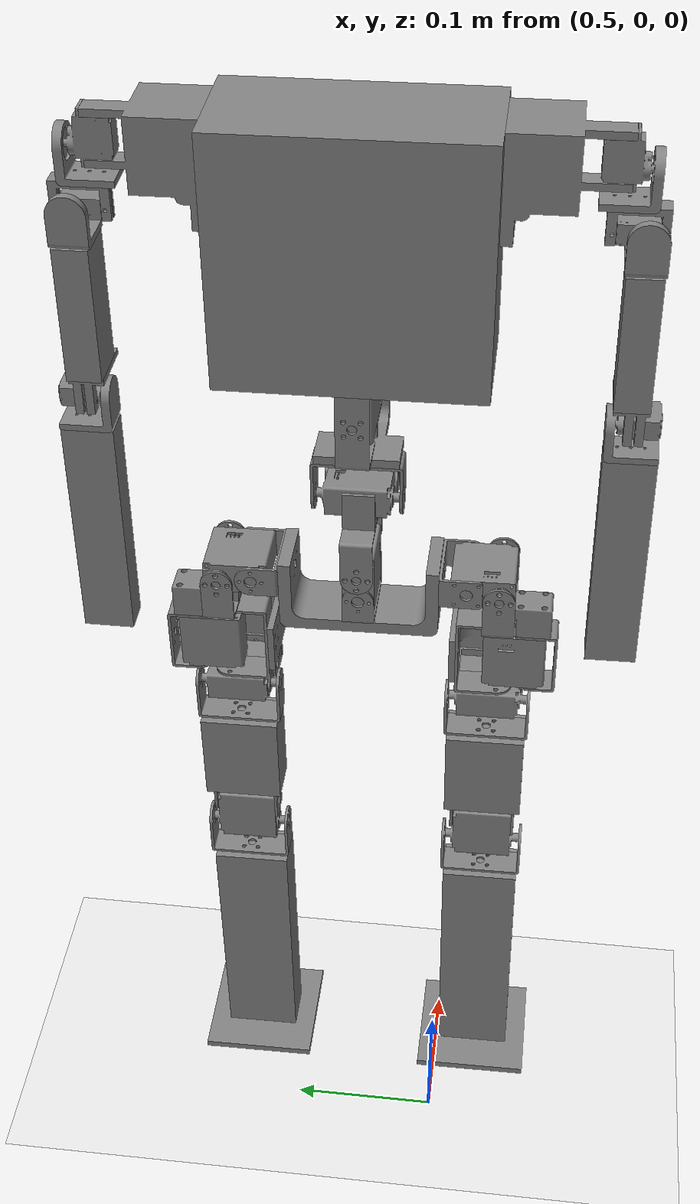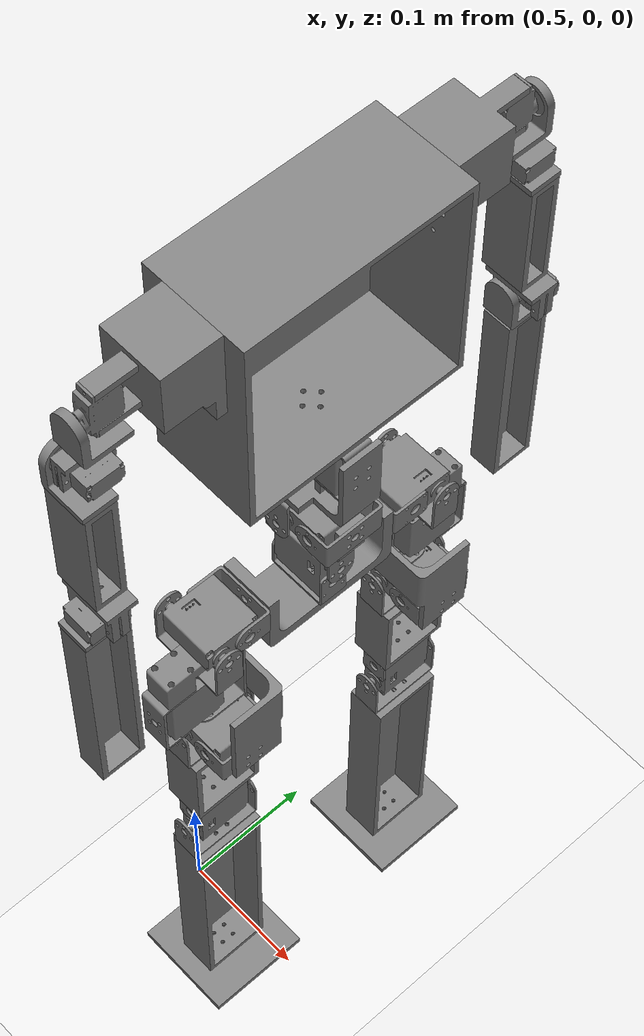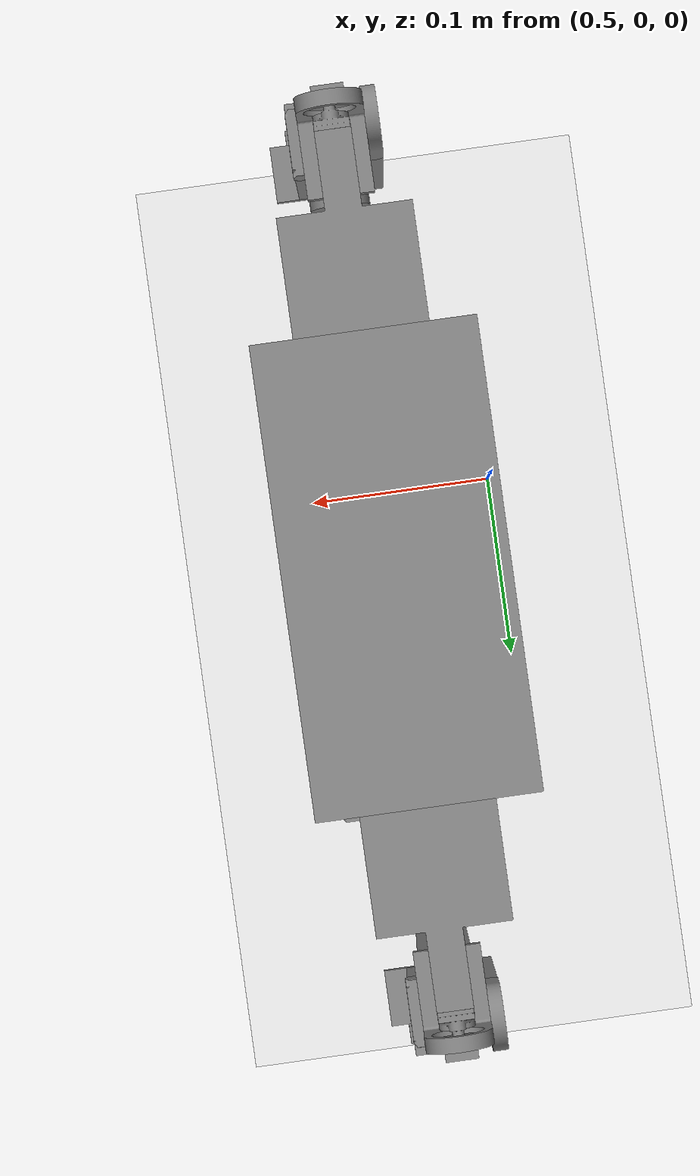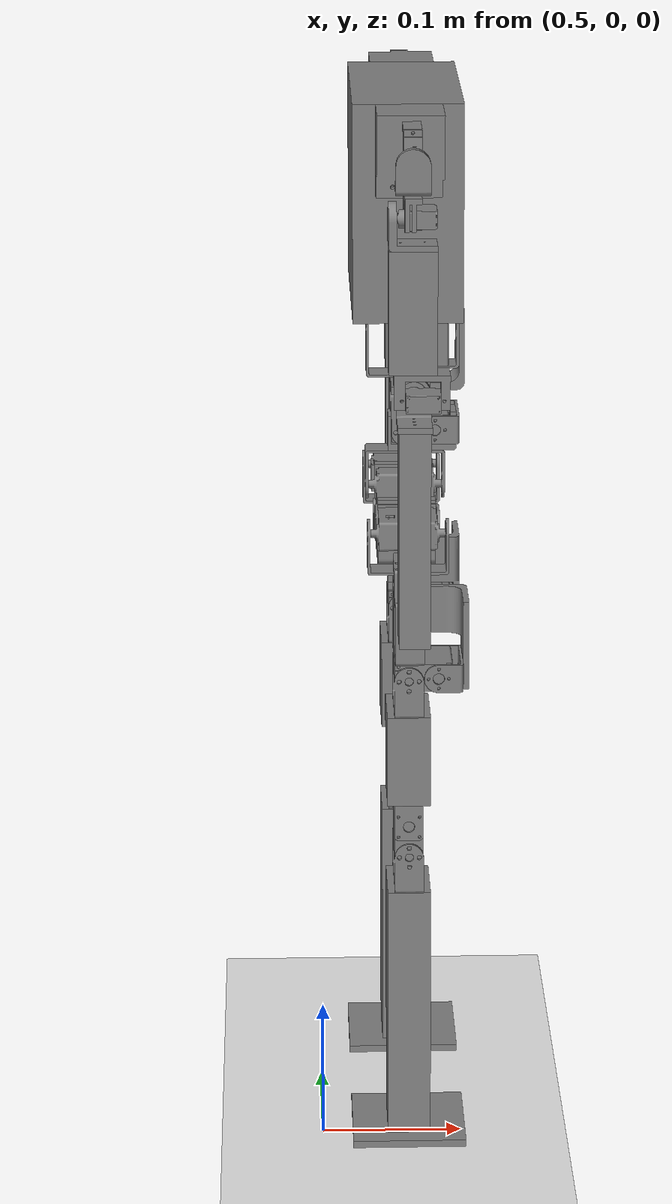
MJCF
<?xml version='1.0' encoding='utf-8'?>
<mujoco model="HumanoidReal">
  <compiler angle="radian" discardvisual="false" meshdir="humanoid_meshes" />
  <asset>
    <mesh name="base_link" content_type="model/stl" file="base_link.stl" scale="0.001 0.001 0.001" />
    <mesh name="mount_2" content_type="model/stl" file="mount_2.stl" scale="0.001 0.001 0.001" />
    <mesh name="mount_6" content_type="model/stl" file="mount_6.stl" scale="0.001 0.001 0.001" />
    <mesh name="mount_3" content_type="model/stl" file="mount_3.stl" scale="0.001 0.001 0.001" />
    <mesh name="mount_1" content_type="model/stl" file="mount_1.stl" scale="0.001 0.001 0.001" />
    <mesh name="mount_4" content_type="model/stl" file="mount_4.stl" scale="0.001 0.001 0.001" />
    <mesh name="mount_5" content_type="model/stl" file="mount_5.stl" scale="0.001 0.001 0.001" />
    <mesh name="0003_9" content_type="model/stl" file="0003_9.stl" scale="0.001 0.001 0.001" />
    <mesh name="0003_8" content_type="model/stl" file="0003_8.stl" scale="0.001 0.001 0.001" />
    <mesh name="0003_7" content_type="model/stl" file="0003_7.stl" scale="0.001 0.001 0.001" />
    <mesh name="0003_2" content_type="model/stl" file="0003_2.stl" scale="0.001 0.001 0.001" />
    <mesh name="0003_6" content_type="model/stl" file="0003_6.stl" scale="0.001 0.001 0.001" />
    <mesh name="0003_4" content_type="model/stl" file="0003_4.stl" scale="0.001 0.001 0.001" />
    <mesh name="0003_1" content_type="model/stl" file="0003_1.stl" scale="0.001 0.001 0.001" />
    <mesh name="0003_10" content_type="model/stl" file="0003_10.stl" scale="0.001 0.001 0.001" />
    <mesh name="0003_11" content_type="model/stl" file="0003_11.stl" scale="0.001 0.001 0.001" />
    <mesh name="0003_5" content_type="model/stl" file="0003_5.stl" scale="0.001 0.001 0.001" />
    <mesh name="0003_3" content_type="model/stl" file="0003_3.stl" scale="0.001 0.001 0.001" />
    <mesh name="0004_1" content_type="model/stl" file="0004_1.stl" scale="0.001 0.001 0.001" />
    <mesh name="0004_3" content_type="model/stl" file="0004_3.stl" scale="0.001 0.001 0.001" />
    <mesh name="rightXZprint_1" content_type="model/stl" file="rightXZprint_1.stl" scale="0.001 0.001 0.001" />
    <mesh name="rightXZprint_2" content_type="model/stl" file="rightXZprint_2.stl" scale="0.001 0.001 0.001" />
    <mesh name="0004_7" content_type="model/stl" file="0004_7.stl" scale="0.001 0.001 0.001" />
    <mesh name="0004_6" content_type="model/stl" file="0004_6.stl" scale="0.001 0.001 0.001" />
    <mesh name="rightZYprint_1" content_type="model/stl" file="rightZYprint_1.stl" scale="0.001 0.001 0.001" />
    <mesh name="LeftZYprint_1" content_type="model/stl" file="LeftZYprint_1.stl" scale="0.001 0.001 0.001" />
    <mesh name="0004_10" content_type="model/stl" file="0004_10.stl" scale="0.001 0.001 0.001" />
    <mesh name="0004_8" content_type="model/stl" file="0004_8.stl" scale="0.001 0.001 0.001" />
    <mesh name="thigh_2" content_type="model/stl" file="thigh_2.stl" scale="0.001 0.001 0.001" />
    <mesh name="thigh_1" content_type="model/stl" file="thigh_1.stl" scale="0.001 0.001 0.001" />
    <mesh name="0004_9" content_type="model/stl" file="0004_9.stl" scale="0.001 0.001 0.001" />
    <mesh name="0004_2" content_type="model/stl" file="0004_2.stl" scale="0.001 0.001 0.001" />
    <mesh name="rightshin_1" content_type="model/stl" file="rightshin_1.stl" scale="0.001 0.001 0.001" />
    <mesh name="rightshin_2" content_type="model/stl" file="rightshin_2.stl" scale="0.001 0.001 0.001" />
    <mesh name="rightfoot_2" content_type="model/stl" file="rightfoot_2.stl" scale="0.001 0.001 0.001" />
    <mesh name="rightfoot_1" content_type="model/stl" file="rightfoot_1.stl" scale="0.001 0.001 0.001" />
    <mesh name="0004_11" content_type="model/stl" file="0004_11.stl" scale="0.001 0.001 0.001" />
    <mesh name="XYWaist_1" content_type="model/stl" file="XYWaist_1.stl" scale="0.001 0.001 0.001" />
    <mesh name="0004_4" content_type="model/stl" file="0004_4.stl" scale="0.001 0.001 0.001" />
    <mesh name="YZWaist_1" content_type="model/stl" file="YZWaist_1.stl" scale="0.001 0.001 0.001" />
    <mesh name="0004_5" content_type="model/stl" file="0004_5.stl" scale="0.001 0.001 0.001" />
    <mesh name="shoulderLeft_1" content_type="model/stl" file="shoulderLeft_1.stl" scale="0.001 0.001 0.001" />
    <mesh name="shoulderRight_1" content_type="model/stl" file="shoulderRight_1.stl" scale="0.001 0.001 0.001" />
    <mesh name="Component22_1" content_type="model/stl" file="Component22_1.stl" scale="0.001 0.001 0.001" />
    <mesh name="SCS0009_6" content_type="model/stl" file="SCS0009_6.stl" scale="0.001 0.001 0.001" />
    <mesh name="SCS0009_5" content_type="model/stl" file="SCS0009_5.stl" scale="0.001 0.001 0.001" />
    <mesh name="rightShoulderConnector_1" content_type="model/stl" file="rightShoulderConnector_1.stl" scale="0.001 0.001 0.001" />
    <mesh name="shoulderConnector_1" content_type="model/stl" file="shoulderConnector_1.stl" scale="0.001 0.001 0.001" />
    <mesh name="SCS0009_1" content_type="model/stl" file="SCS0009_1.stl" scale="0.001 0.001 0.001" />
    <mesh name="SCS0009_4" content_type="model/stl" file="SCS0009_4.stl" scale="0.001 0.001 0.001" />
    <mesh name="upperArm_2" content_type="model/stl" file="upperArm_2.stl" scale="0.001 0.001 0.001" />
    <mesh name="upperArm_1" content_type="model/stl" file="upperArm_1.stl" scale="0.001 0.001 0.001" />
    <mesh name="elbowConnector_1" content_type="model/stl" file="elbowConnector_1.stl" scale="0.001 0.001 0.001" />
    <mesh name="rightElbowConnector_1" content_type="model/stl" file="rightElbowConnector_1.stl" scale="0.001 0.001 0.001" />
    <mesh name="SCS0009_3" content_type="model/stl" file="SCS0009_3.stl" scale="0.001 0.001 0.001" />
    <mesh name="SCS0009_2" content_type="model/stl" file="SCS0009_2.stl" scale="0.001 0.001 0.001" />
    <mesh name="forearm_1" content_type="model/stl" file="forearm_1.stl" scale="0.001 0.001 0.001" />
    <mesh name="forearm_2" content_type="model/stl" file="forearm_2.stl" scale="0.001 0.001 0.001" />
    <mesh name="Servo_SC15_7" content_type="model/stl" file="Servo_SC15_7.stl" scale="0.001 0.001 0.001" />
    <mesh name="Servo_SC15_1" content_type="model/stl" file="Servo_SC15_1.stl" scale="0.001 0.001 0.001" />
    <mesh name="Servo_SC15_2" content_type="model/stl" file="Servo_SC15_2.stl" scale="0.001 0.001 0.001" />
    <mesh name="Servo_SC15_10" content_type="model/stl" file="Servo_SC15_10.stl" scale="0.001 0.001 0.001" />
    <mesh name="Servo_SC15_3" content_type="model/stl" file="Servo_SC15_3.stl" scale="0.001 0.001 0.001" />
    <mesh name="Servo_SC15_9" content_type="model/stl" file="Servo_SC15_9.stl" scale="0.001 0.001 0.001" />
    <mesh name="Servo_SC15_11" content_type="model/stl" file="Servo_SC15_11.stl" scale="0.001 0.001 0.001" />
    <mesh name="Servo_SC15_4" content_type="model/stl" file="Servo_SC15_4.stl" scale="0.001 0.001 0.001" />
    <mesh name="Servo_SC15_8" content_type="model/stl" file="Servo_SC15_8.stl" scale="0.001 0.001 0.001" />
    <mesh name="Servo_SC15_6" content_type="model/stl" file="Servo_SC15_6.stl" scale="0.001 0.001 0.001" />
    <mesh name="Servo_SC15_5" content_type="model/stl" file="Servo_SC15_5.stl" scale="0.001 0.001 0.001" />
  </asset>
  <worldbody>
    <light directional="true" diffuse=".8 .8 .8" pos="0 0 5" dir="0 0 -1" />
    <geom name="floor" type="plane" size="10 10 0.1" rgba=".9 .9 .9 1" condim="3" contype="1" conaffinity="1" friction="1 0.05 0.01" />
    <body name="base_link" pos="0 0 -0.0130">
      <inertial pos="0.560761 0.0595841 0.468225" quat="0.71166 0.702462 0.00423149 -0.00831799" mass="0.200499" diaginertia="0.000487525 0.000480397 5.91675e-05" />
      <joint name="base_joint" type="free" />
      <geom class="col" type="box" pos="0.56068 0.059705 0.46901" size="0.024557 0.09239 0.026525" />
      <geom type="mesh" mesh="base_link" />
      <geom type="mesh" mesh="0004_1" />
      <geom type="mesh" mesh="Servo_SC15_7" />
      <geom type="mesh" mesh="0004_3" />
      <geom type="mesh" mesh="Servo_SC15_8" />
      <geom type="mesh" mesh="0004_11" />
      <geom type="mesh" mesh="Servo_SC15_3" />
      <!-- ===== RIGHT LEG (-Y side): hip-roll R18 -> hip-yaw R26 -> hip-pitch R23 -> knee R21 ===== -->
      <body name="0003_9" pos="0.540429 -0.527466 0.983811">
        <inertial pos="0.0199709 0.487905 -0.546011" quat="0.703204 -0.112714 0.108979 0.693487" mass="0.0776808" diaginertia="5.95863e-05 5.93547e-05 2.03218e-05" />
        <joint name="Revolute 18" pos="0.045703 0.49663 -0.50471" axis="1 0 0" range="-1.5708 0.349066" actuatorfrcrange="-100 100" />
        <geom class="col" type="box" pos="0.019903 0.48517 -0.54391" size="0.02641 0.023137 0.045995" />
        <geom pos="-0.540429 0.527466 -0.983811" quat="1 0 0 0" type="mesh" mesh="0003_9" />
        <geom pos="-0.540429 0.527466 -0.983811" quat="1 0 0 0" type="mesh" mesh="rightXZprint_2" />
        <geom pos="-0.540429 0.527466 -0.983811" type="mesh" mesh="0004_6" />
        <geom pos="-0.540429 0.527466 -0.983811" quat="1 0 0 0" type="mesh" mesh="Servo_SC15_6" />
        <body name="0003_11" pos="-0.437997 1.05685 -0.548399">
          <inertial pos="0.474096 -0.547086 -0.0384282" quat="0.675749 -0.203659 0.00282291 0.708434" mass="0.206952" diaginertia="0.000149888 0.000129229 7.29504e-05" />
          <joint name="Revolute 26" pos="0.46038 -0.55657 -0.044116" axis="0 -0.013033 -0.999915" range="-1.5708 0.959931" actuatorfrcrange="-100 100" />
          <geom class="col" type="box" pos="0.47388 -0.55295 -0.028927" size="0.024538 0.024714 0.036634" />
          <geom pos="-0.102432 -0.529383 -0.435412" type="mesh" mesh="0003_11" />
          <geom pos="-0.102432 -0.529383 -0.435412" quat="1 0 0 0" type="mesh" mesh="LeftZYprint_1" />
          <geom pos="-0.102432 -0.529383 -0.435412" quat="1 0 0 0" type="mesh" mesh="0004_10" />
          <geom pos="-0.102432 -0.529383 -0.435412" quat="1 0 0 0" type="mesh" mesh="Servo_SC15_11" />
          <body name="0003_4" pos="-0.091932 -0.549871 0.341287">
            <inertial pos="0.549211 -0.00442872 -0.464503" quat="0.99995 -0.00961247 -0.00287962 0.000387732" mass="0.0794069" diaginertia="0.00011649 0.000102172 2.14625e-05" />
            <joint name="Revolute 23" pos="0.54708 -0.029244 -0.39741" axis="0 -0.999915 0.013033" range="-1.5708 0.349066" actuatorfrcrange="-100 100" />
            <geom class="col" type="box" pos="0.55 -0.003554 -0.46301" size="0.01425 0.026624 0.071134" />
            <geom pos="-0.0105 0.020488 -0.776699" quat="1 0 0 0" type="mesh" mesh="0003_4" />
            <geom pos="-0.0105 0.020488 -0.776699" type="mesh" mesh="thigh_1" />
            <geom pos="-0.0105 0.020488 -0.776699" quat="1 0 0 0" type="mesh" mesh="0004_2" />
            <geom pos="-0.0105 0.020488 -0.776699" type="mesh" mesh="Servo_SC15_10" />
            <body name="0003_2" pos="0.80407 -0.037649 -1.06229">
              <inertial pos="-0.255259 0.0306227 0.416142" quat="0.999979 -0.00651593 0.000166268 4.30665e-06" mass="0.0225885" diaginertia="9.51179e-05 9.14171e-05 7.58717e-06" />
              <joint name="Revolute 21" pos="-0.25103 0.057961 0.53458" axis="0 0.999915 -0.013033" range="-1.5708 1.5708" actuatorfrcrange="-100 100" />
              <geom class="col" type="box" pos="-0.25393 0.02937 0.43109" size="0.038 0.038028 0.10776" />
              <geom pos="-0.81457 0.058137 0.28559" quat="1 0 0 0" type="mesh" mesh="0003_2" />
              <geom pos="-0.81457 0.058137 0.28559" type="mesh" mesh="rightshin_2" />
              <geom pos="-0.81457 0.058137 0.28559" quat="1 0 0 0" type="mesh" mesh="rightfoot_2" />
            </body>
          </body>
        </body>
      </body>
      <!-- ===== LEFT LEG (+Y side): hip-roll R24 -> hip-yaw R28 -> hip-pitch R25 -> knee R27 ===== -->
      <body name="0003_1" pos="0.395242 0.737653 0.965035">
        <inertial pos="0.165721 -0.579743 -0.52981" quat="0.70456 0.103533 -0.0999379 0.694902" mass="0.0776808" diaginertia="5.95863e-05 5.93547e-05 2.03218e-05" />
        <joint name="Revolute 24" pos="0.13999 -0.58739 -0.4883" axis="-1 0 0" range="-1.5708 0.174533" actuatorfrcrange="-100 100" />
        <geom class="col" type="box" pos="0.16579 -0.57703 -0.52742" size="0.02641 0.022641 0.045995" />
        <geom pos="-0.395242 -0.737653 -0.965035" quat="1 0 0 0" type="mesh" mesh="0003_1" />
        <geom pos="-0.395242 -0.737653 -0.965035" quat="1 0 0 0" type="mesh" mesh="rightXZprint_1" />
        <geom pos="-0.395242 -0.737653 -0.965035" type="mesh" mesh="0004_7" />
        <geom pos="-0.395242 -0.737653 -0.965035" quat="1 0 0 0" type="mesh" mesh="Servo_SC15_9" />
        <body name="0003_3" pos="0.610997 -1.12513 -0.692973">
          <inertial pos="-0.429313 0.522882 0.122926" quat="0.719961 0.00594836 -0.199 0.664846" mass="0.206952" diaginertia="0.000150862 0.000130091 7.31868e-05" />
          <joint name="Revolute 28" pos="-0.44798 0.53223 0.11699" axis="0 -0.013033 -0.999915" range="-0.959931 1.5708" actuatorfrcrange="-100 100" />
          <geom class="col" type="box" pos="-0.42953 0.52862 0.1323" size="0.024538 0.02455 0.036665" />
          <geom pos="-1.00624 0.38748 -0.272062" type="mesh" mesh="0003_3" />
          <geom pos="-1.00624 0.38748 -0.272062" quat="1 0 0 0" type="mesh" mesh="rightZYprint_1" />
          <geom pos="-1.00624 0.38748 -0.272062" quat="1 0 0 0" type="mesh" mesh="0004_8" />
          <geom pos="-1.00624 0.38748 -0.272062" quat="1 0 0 0" type="mesh" mesh="Servo_SC15_4" />
          <body name="0003_10" pos="-0.995739 0.366978 0.502481">
            <inertial pos="0.54961 0.160975 -0.464503" quat="0.99995 -0.00961056 -0.00287866 0.00038788" mass="0.0794069" diaginertia="0.00011649 0.000102172 2.14625e-05" />
            <joint name="Revolute 25" pos="0.54748 0.13616 -0.39741" axis="0 -0.999915 0.013033" range="-1.5708 0.349066" actuatorfrcrange="-100 100" />
            <geom class="col" type="box" pos="0.5504 0.16185 -0.46301" size="0.01425 0.026624 0.071134" />
            <geom pos="-0.0105 0.020502 -0.774543" quat="1 0 0 0" type="mesh" mesh="0003_10" />
            <geom pos="-0.0105 0.020502 -0.774543" type="mesh" mesh="thigh_2" />
            <geom pos="-0.0105 0.020502 -0.774543" quat="1 0 0 0" type="mesh" mesh="0004_9" />
            <geom pos="-0.0105 0.020502 -0.774543" type="mesh" mesh="Servo_SC15_5" />
            <body name="0003_5" pos="0.802314 0.293125 -1.06485">
              <inertial pos="-0.253103 -0.136139 0.418716" quat="0.999968 -0.0080307 0.000162436 -0.000421537" mass="0.0225885" diaginertia="9.51212e-05 9.14178e-05 7.58976e-06" />
              <joint name="Revolute 27" pos="-0.25335 -0.10745 0.53383" axis="0 0.999915 -0.013033" range="-1.5708 1.5708" actuatorfrcrange="-100 100" />
              <geom class="col" type="box" pos="-0.25177 -0.1375 0.43366" size="0.038 0.038028 0.10775" />
              <geom pos="-0.812814 -0.272623 0.290302" quat="1 0 0 0" type="mesh" mesh="0003_5" />
              <geom pos="-0.812814 -0.272623 0.290302" type="mesh" mesh="rightshin_1" />
              <geom pos="-0.812814 -0.272623 0.290302" quat="1 0 0 0" type="mesh" mesh="rightfoot_1" />
            </body>
          </body>
        </body>
      </body>
      <!-- ===== WAIST / TORSO: roll R22 -> pitch R20 -> yaw R19 (0003_8 carries both arms) ===== -->
      <body name="0003_6" pos="0.482752 -0.417042 1.07481">
        <inertial pos="0.0885842 0.478008 -0.553434" quat="0.648893 0.29978 0.347507 0.606885" mass="0.125775" diaginertia="6.52373e-05 5.69452e-05 3.12876e-05" />
        <joint name="Revolute 22" pos="0.052479 0.47988 -0.58753" axis="-1 0 0" range="-0.610865 0.610865" actuatorfrcrange="-100 100" />
        <geom class="col" type="box" pos="0.083129 0.47867 -0.56507" size="0.031017 0.024291 0.030802" />
        <geom pos="-0.482752 0.417042 -1.07481" quat="1 0 0 0" type="mesh" mesh="0003_6" />
        <geom pos="-0.482752 0.417042 -1.07481" quat="1 0 0 0" type="mesh" mesh="XYWaist_1" />
        <geom pos="-0.482752 0.417042 -1.07481" quat="1 0 0 0" type="mesh" mesh="0004_4" />
        <geom pos="-0.482752 0.417042 -1.07481" quat="1 0 0 0" type="mesh" mesh="Servo_SC15_1" />
        <body name="0003_7" pos="-0.472252 0.395027 0.010165">
          <inertial pos="0.564995 0.0840484 -0.509006" quat="0.703699 0.14178 0.15295 0.6792" mass="0.0775978" diaginertia="5.80811e-05 5.64689e-05 2.22622e-05" />
          <joint name="Revolute 20" pos="0.55329 0.057887 -0.55353" axis="0 -0.999979 0.006517" range="-0.349066 1.5708" actuatorfrcrange="-100 100" />
          <geom class="col" type="box" pos="0.56602 0.08374 -0.51373" size="0.024356 0.026518 0.046936" />
          <geom pos="-0.0105 0.022015 -1.08498" quat="1 0 0 0" type="mesh" mesh="0003_7" />
          <geom pos="-0.0105 0.022015 -1.08498" quat="1 0 0 0" type="mesh" mesh="YZWaist_1" />
          <geom pos="-0.0105 0.022015 -1.08498" quat="1 0 0 0" type="mesh" mesh="0004_5" />
          <geom pos="-0.0105 0.022015 -1.08498" quat="1 0 0 0" type="mesh" mesh="Servo_SC15_2" />
          <body name="0003_8" pos="0 0.677737 -0.408133">
            <inertial pos="0.545233 -0.592748 0.0233442" quat="0.709375 0.704761 0.00704921 -0.00696769" mass="0.0651469" diaginertia="0.000335532 0.000217093 0.000162389" />
            <joint name="Revolute 19" pos="0.55039 -0.59626 -0.055993" axis="0 0.006517 0.999979" range="-1.5708 1.5708" actuatorfrcrange="-100 100" />
            <geom class="col" type="box" pos="0.55039 -0.59244 -0.0064592" size="0.035625 0.15077 0.098056" />
            <geom pos="-0.0105 -0.655722 -0.676846" quat="1 0 0 0" type="mesh" mesh="0003_8" />
            <geom pos="-0.0105 -0.655722 -0.676846" quat="1 0 0 0" type="mesh" mesh="Component22_1" />
            <geom pos="-0.0105 -0.655722 -0.676846" quat="1 0 0 0" type="mesh" mesh="shoulderLeft_1" />
            <geom pos="-0.0105 -0.655722 -0.676846" quat="1 0 0 0" type="mesh" mesh="SCS0009_5" />
            <geom pos="-0.0105 -0.655722 -0.676846" quat="1 0 0 0" type="mesh" mesh="shoulderRight_1" />
            <geom pos="-0.0105 -0.655722 -0.676846" quat="1 0 0 0" type="mesh" mesh="SCS0009_6" />
            <!-- ===== LEFT ARM (+Y side): shoulder R2 -> R6 -> elbow R1 ===== -->
            <body name="mount_6" pos="0.54596 -0.420605 0.079674">
              <inertial pos="0.00522431 -0.0205656 -0.0345126" quat="0.993894 -0.0455086 -0.00182503 0.1005" mass="0.0111502" diaginertia="2.75276e-06 2.47098e-06 1.15447e-06" />
              <joint name="Revolute 2" pos="0.0028757 -0.013245 -0.01882" axis="0 0.999979 -0.006517" range="-2.0944 2.0944" actuatorfrcrange="-100 100" />
              <geom class="col" type="box" pos="0.0057089 -0.023817 -0.026448" size="0.014226 0.018524 0.026353" />
              <geom pos="-0.55646 -0.235117 -0.75652" quat="1 0 0 0" type="mesh" mesh="mount_6" />
              <geom pos="-0.55646 -0.235117 -0.75652" quat="1 0 0 0" type="mesh" mesh="rightShoulderConnector_1" />
              <geom pos="-0.55646 -0.235117 -0.75652" quat="1 0 0 0" type="mesh" mesh="SCS0009_1" />
              <body name="mount_5" pos="-0.01447 -0.002339 -0.035059">
                <inertial pos="0.0192529 -0.0123951 -0.0789889" quat="0.683819 -0.0221439 -0.0417918 0.728118" mass="0.0143067" diaginertia="2.07945e-05 2.02537e-05 1.57638e-06" />
                <joint name="Revolute 6" pos="0.0052039 -0.019244 -0.016752" axis="-1 0 0" range="-1.5708 0.436332" actuatorfrcrange="-100 100" />
                <geom class="col" type="box" pos="0.023491 -0.0089637 -0.069134" size="0.019285 0.014938 0.066884" />
                <geom pos="-0.54199 -0.232778 -0.721461" quat="1 0 0 0" type="mesh" mesh="mount_5" />
                <geom pos="-0.54199 -0.232778 -0.721461" quat="1 0 0 0" type="mesh" mesh="upperArm_2" />
                <geom pos="-0.54199 -0.232778 -0.721461" quat="1 0 0 0" type="mesh" mesh="rightElbowConnector_1" />
                <geom pos="-0.54199 -0.232778 -0.721461" quat="1 0 0 0" type="mesh" mesh="SCS0009_2" />
                <body name="mount_2" pos="0.015106 -0.01 -0.12041">
                  <inertial pos="0.00454219 0.00029577 -0.0973817" quat="0.999949 0.00977886 0.000985036 0.00235478" mass="0.00475984" diaginertia="1.14432e-05 1.11889e-05 5.20745e-07" />
                  <joint name="Revolute 1" pos="0.01126 -0.013189 -0.0037075" axis="0 -1 0" range="0 2.0944" actuatorfrcrange="-100 100" />
                  <geom class="col" type="box" pos="0.0052039 0.00081094 -0.08873" size="0.010925 0.0152 0.0855" />
                  <geom pos="-0.557096 -0.222778 -0.601051" quat="1 0 0 0" type="mesh" mesh="mount_2" />
                  <geom pos="-0.557096 -0.222778 -0.601051" type="mesh" mesh="forearm_1" />
                </body>
              </body>
            </body>
            <!-- ===== RIGHT ARM (-Y side): shoulder R4 -> R5 -> elbow R3 ===== -->
            <body name="mount_1" pos="0.54596 -0.737898 0.081742">
              <inertial pos="0.0052243 -0.00612573 -0.0343075" quat="0.994043 0.0411602 -0.000330235 -0.100916" mass="0.0111502" diaginertia="2.67978e-06 2.39845e-06 1.15408e-06" />
              <joint name="Revolute 4" pos="0.0075308 -0.013245 -0.01882" axis="0 -0.999979 0.006517" range="-2.0944 2.0944" actuatorfrcrange="-100 100" />
              <geom class="col" type="box" pos="0.0057089 -0.002874 -0.026465" size="0.014226 0.018604 0.026361" />
              <geom pos="-0.55646 0.082176 -0.758588" quat="1 0 0 0" type="mesh" mesh="mount_1" />
              <geom pos="-0.55646 0.082176 -0.758588" quat="1 0 0 0" type="mesh" mesh="shoulderConnector_1" />
              <geom pos="-0.55646 0.082176 -0.758588" quat="1 0 0 0" type="mesh" mesh="SCS0009_4" />
              <body name="mount_4" pos="-0.01447 0.001881 -0.035087">
                <inertial pos="0.019253 -0.0146651 -0.0788878" quat="0.726019 -0.0436083 -0.0205114 0.685984" mass="0.0143067" diaginertia="2.06564e-05 2.01031e-05 1.56405e-06" />
                <joint name="Revolute 5" pos="0.0052039 -0.019139 -0.016848" axis="-1 0 0" range="-2.00713 0" actuatorfrcrange="-100 100" />
                <geom class="col" type="box" pos="0.023491 -0.017436 -0.069205" size="0.019285 0.014959 0.06695" />
                <geom pos="-0.54199 0.080295 -0.723501" quat="1 0 0 0" type="mesh" mesh="mount_4" />
                <geom pos="-0.54199 0.080295 -0.723501" quat="1 0 0 0" type="mesh" mesh="upperArm_1" />
                <geom pos="-0.54199 0.080295 -0.723501" quat="1 0 0 0" type="mesh" mesh="elbowConnector_1" />
                <geom pos="-0.54199 0.080295 -0.723501" quat="1 0 0 0" type="mesh" mesh="SCS0009_3" />
                <body name="mount_3" pos="0.015106 0.01003 -0.12055">
                  <inertial pos="0.00454219 -0.0277622 -0.0971998" quat="0.999865 -0.0162237 0.000970111 -0.00234332" mass="0.00475984" diaginertia="1.14429e-05 1.11889e-05 5.2058e-07" />
                  <joint name="Revolute 3" pos="-0.00065957 -0.013276 -0.016925" axis="0 0.999915 -0.013033" range="-2.0944 0" actuatorfrcrange="-100 100" />
                  <geom class="col" type="box" pos="0.0052039 -0.028185 -0.088715" size="0.010925 0.016289 0.085526" />
                  <geom pos="-0.557096 0.070265 -0.602951" quat="1 0 0 0" type="mesh" mesh="mount_3" />
                  <geom pos="-0.557096 0.070265 -0.602951" type="mesh" mesh="forearm_2" />
                </body>
              </body>
            </body>
          </body>
        </body>
      </body>
    </body>
  </worldbody>
  <option timestep="0.005" gravity="0 0 -9.81" iterations="50" solver="Newton" tolerance="1e-10" />
  <default>
    <joint damping="1.0" armature="0.01" />
    <geom contype="0" conaffinity="0" group="2" condim="3" />
    <default class="col">
      <geom contype="1" conaffinity="1" group="3" condim="3" friction="1 0.05 0.01" rgba="0.3 0.6 1 0.25" />
    </default>
  </default>
  <contact>
    <exclude body1="0003_11" body2="base_link" />
    <exclude body1="0003_8" body2="mount_2" />
    <exclude body1="0003_8" body2="mount_3" />
    <exclude body1="0003_8" body2="mount_4" />
    <exclude body1="0003_8" body2="mount_5" />
  </contact>
  <actuator>
    <motor name="Revolute 18" joint="Revolute 18" ctrllimited="true" ctrlrange="-1 1" gear="50" />
    <motor name="Revolute 26" joint="Revolute 26" ctrllimited="true" ctrlrange="-1 1" gear="50" />
    <motor name="Revolute 23" joint="Revolute 23" ctrllimited="true" ctrlrange="-1 1" gear="50" />
    <motor name="Revolute 21" joint="Revolute 21" ctrllimited="true" ctrlrange="-1 1" gear="50" />
    <motor name="Revolute 24" joint="Revolute 24" ctrllimited="true" ctrlrange="-1 1" gear="50" />
    <motor name="Revolute 28" joint="Revolute 28" ctrllimited="true" ctrlrange="-1 1" gear="50" />
    <motor name="Revolute 25" joint="Revolute 25" ctrllimited="true" ctrlrange="-1 1" gear="50" />
    <motor name="Revolute 27" joint="Revolute 27" ctrllimited="true" ctrlrange="-1 1" gear="50" />
    <motor name="Revolute 22" joint="Revolute 22" ctrllimited="true" ctrlrange="-1 1" gear="50" />
    <motor name="Revolute 20" joint="Revolute 20" ctrllimited="true" ctrlrange="-1 1" gear="50" />
    <motor name="Revolute 19" joint="Revolute 19" ctrllimited="true" ctrlrange="-1 1" gear="50" />
    <motor name="Revolute 2" joint="Revolute 2" ctrllimited="true" ctrlrange="-1 1" gear="50" />
    <motor name="Revolute 6" joint="Revolute 6" ctrllimited="true" ctrlrange="-1 1" gear="50" />
    <motor name="Revolute 1" joint="Revolute 1" ctrllimited="true" ctrlrange="-1 1" gear="50" />
    <motor name="Revolute 4" joint="Revolute 4" ctrllimited="true" ctrlrange="-1 1" gear="50" />
    <motor name="Revolute 5" joint="Revolute 5" ctrllimited="true" ctrlrange="-1 1" gear="50" />
    <motor name="Revolute 3" joint="Revolute 3" ctrllimited="true" ctrlrange="-1 1" gear="50" />
  </actuator>
  <keyframe>
    <key name="home" qpos="0 0 -0.013 1 0 0 0 0 0 0 0 0 0 0 0 0 0 0 0 0 0 0 0 0" />
  </keyframe>
</mujoco>
